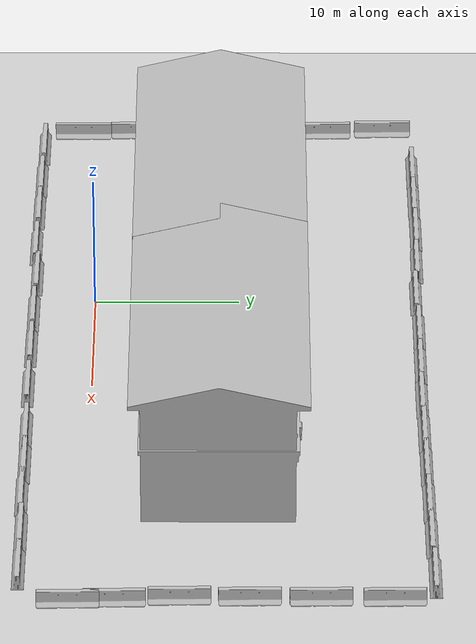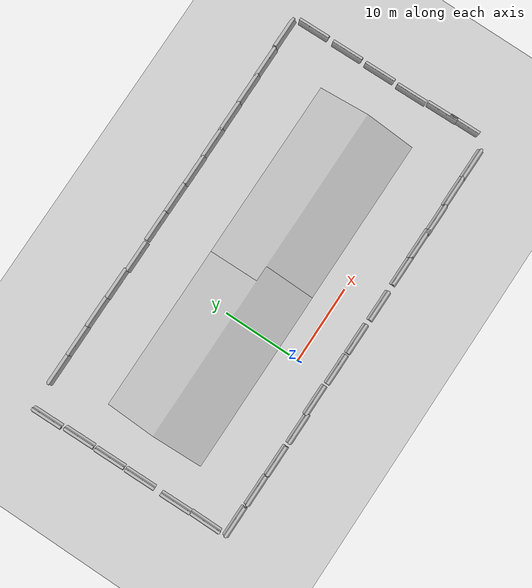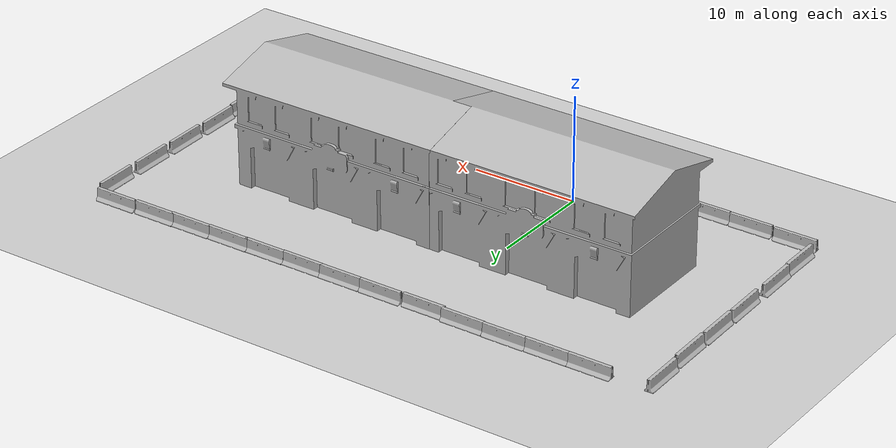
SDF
<sdf version="1.6">
 <world name="default">
  <physics name="default_physics" default="0" type="ode">
   <ode>
    <solver>
     <type>quick</type>
     <iters>40</iters>
     <sor>1</sor>
     <use_dynamic_moi_rescaling>0</use_dynamic_moi_rescaling>
    </solver>
    <constraints>
     <cfm>0</cfm>
     <erp>0.2</erp>
     <contact_max_correcting_vel>100</contact_max_correcting_vel>
     <contact_surface_layer>0</contact_surface_layer>
    </constraints>
   </ode>
   <max_step_size>0.001</max_step_size>
   <real_time_factor>1</real_time_factor>
   <real_time_update_rate>1000</real_time_update_rate>
  </physics>
  <light name="sun" type="directional">
   <pose>0 0 10 0 -0 0</pose>
   <diffuse>0.8 0.8 0.8 1</diffuse>
   <specular>0.1 0.1 0.1 1</specular>
   <attenuation>
    <range>1000</range>
    <constant>0.9</constant>
    <linear>0.01</linear>
    <quadratic>0.001</quadratic>
   </attenuation>
   <direction>-0.5 0.5 -1</direction>
  </light>
  <model name="ground_plane">
   <static>1</static>
   <link name="link">
    <collision name="collision">
     <geometry><plane><normal>0 0 1</normal><size>100 100</size></plane></geometry>
     <surface><friction><ode><mu>100</mu><mu2>50</mu2></ode></friction></surface>
    </collision>
    <visual name="visual">
     <cast_shadows>0</cast_shadows>
     <geometry><plane><normal>0 0 1</normal><size>100 100</size></plane></geometry>
     <material>
      <script><uri>file://media/materials/scripts/gazebo.material</uri><name>Gazebo/Grey</name></script>
     </material>
    </visual>
   </link>
  </model>
  <model name="b23">
   <static>1</static>
   <link name="link">
    <visual name="visual">
     <geometry>
      <mesh><uri>model://jersey_barrier/meshes/jersey_barrier.dae</uri><scale>1 1 1</scale></mesh>
     </geometry>
    </visual>
    <collision name="upright">
     <pose>0 0 0.5715 0 -0 0</pose>
     <geometry><box><size>4.06542 0.3063 1.143</size></box></geometry>
    </collision>
    <collision name="base">
     <pose>0 0 0.032258 0 -0 0</pose>
     <geometry><box><size>4.06542 0.8107 0.064516</size></box></geometry>
    </collision>
    <collision name="base2">
     <pose>0 0 0.1 0 -0 0</pose>
     <geometry><box><size>4.06542 0.65 0.1</size></box></geometry>
    </collision>
    <collision name="base3">
     <pose>0 0 0.2 0 -0 0</pose>
     <geometry><box><size>4.06542 0.5 0.1</size></box></geometry>
    </collision>
    <collision name="left-angle">
     <pose>0 -0.224 0.2401 0.9 -0 0</pose>
     <geometry><box><size>4.06542 0.5 0.064516</size></box></geometry>
    </collision>
    <collision name="right-angle">
     <pose>0 0.224 0.2401 -0.9 0 0</pose>
     <geometry><box><size>4.06542 0.5 0.064516</size></box></geometry>
    </collision>
   </link>
   <pose>-21.2253 -1.35772 0 0 0 -1.5708</pose>
  </model>
  <gravity>0 0 -9.8</gravity>
  <magnetic_field>6e-06 2.3e-05 -4.2e-05</magnetic_field>
  <atmosphere type="adiabatic"/>
  <scene><ambient>0.4 0.4 0.4 1</ambient><background>0.7 0.7 0.7 1</background><shadows>1</shadows></scene>
  <spherical_coordinates>
   <surface_model>EARTH_WGS84</surface_model>
   <latitude_deg>0</latitude_deg>
   <longitude_deg>0</longitude_deg>
   <elevation>0</elevation>
   <heading_deg>0</heading_deg>
  </spherical_coordinates>
  <model name="fire_station_0">
   <static>1</static>
   <link name="link">
    <collision name="main">
     <pose>0 -0.135 5 0 -0 0</pose>
     <geometry><box><size>19.98 9.68 10</size></box></geometry>
    </collision>
    <collision name="front_top">
     <pose>0 4.957 7 0 -0 0</pose>
     <geometry><box><size>20 0.515 6</size></box></geometry>
    </collision>
    <collision name="column_0">
     <pose>9.333 4.957 2 0 -0 0</pose>
     <geometry><box><size>1.315 0.515 4</size></box></geometry>
    </collision>
    <collision name="column_1">
     <pose>3.33 4.957 2 0 -0 0</pose>
     <geometry><box><size>2.63 0.515 4</size></box></geometry>
    </collision>
    <collision name="column_2">
     <pose>-3.33 4.957 2 0 -0 0</pose>
     <geometry><box><size>2.63 0.515 4</size></box></geometry>
    </collision>
    <collision name="column_3">
     <pose>-9.333 4.957 2 0 -0 0</pose>
     <geometry><box><size>1.315 0.515 4</size></box></geometry>
    </collision>
    <collision name="roof_back">
     <pose>0 -2.742 10.467 0.25 -0 0</pose>
     <geometry><box><size>21.47 6.12 0.28</size></box></geometry>
    </collision>
    <collision name="roof_front">
     <pose>0 3.12 10.467 -0.25 0 0</pose>
     <geometry><box><size>21.47 6.12 0.28</size></box></geometry>
    </collision>
    <collision name="roof_base">
     <pose>0 0.188 9.705 0 -0 0</pose>
     <geometry><box><size>21.47 11.86 0.28</size></box></geometry>
    </collision>
    <collision name="roof_filling_0">
     <pose>0 0.188 9.985 0 -0 0</pose>
     <geometry><box><size>21.47 9.53 0.28</size></box></geometry>
    </collision>
    <collision name="roof_filling_1">
     <pose>0 0.188 10.14 0 -0 0</pose>
     <geometry><box><size>21.47 8.41 0.28</size></box></geometry>
    </collision>
    <collision name="roof_filling_2">
     <pose>0 0.188 10.42 0 -0 0</pose>
     <geometry><box><size>21.47 6.25 0.28</size></box></geometry>
    </collision>
    <collision name="roof_filling_3">
     <pose>0 0.188 10.7 0 -0 0</pose>
     <geometry><box><size>21.47 4.05 0.28</size></box></geometry>
    </collision>
    <collision name="roof_filling_4">
     <pose>0 0.188 10.98 0 -0 0</pose>
     <geometry><box><size>21.47 1.83 0.28</size></box></geometry>
    </collision>
    <visual name="visual">
     <geometry><mesh><uri>model://fire_station/meshes/fire_station.dae</uri><scale>1 1 1</scale></mesh></geometry>
    </visual>
   </link>
   <pose>-4.34451 8.52287 0 0 -0 0</pose>
  </model>
  <model name="fire_station_0_clone">
   <static>1</static>
   <link name="link">
    <collision name="main">
     <pose>0 -0.135 5 0 -0 0</pose>
     <geometry><box><size>19.98 9.68 10</size></box></geometry>
    </collision>
    <collision name="front_top">
     <pose>0 4.957 7 0 -0 0</pose>
     <geometry><box><size>20 0.515 6</size></box></geometry>
    </collision>
    <collision name="column_0">
     <pose>9.333 4.957 2 0 -0 0</pose>
     <geometry><box><size>1.315 0.515 4</size></box></geometry>
    </collision>
    <collision name="column_1">
     <pose>3.33 4.957 2 0 -0 0</pose>
     <geometry><box><size>2.63 0.515 4</size></box></geometry>
    </collision>
    <collision name="column_2">
     <pose>-3.33 4.957 2 0 -0 0</pose>
     <geometry><box><size>2.63 0.515 4</size></box></geometry>
    </collision>
    <collision name="column_3">
     <pose>-9.333 4.957 2 0 -0 0</pose>
     <geometry><box><size>1.315 0.515 4</size></box></geometry>
    </collision>
    <collision name="roof_back">
     <pose>0 -2.742 10.467 0.25 -0 0</pose>
     <geometry><box><size>21.47 6.12 0.28</size></box></geometry>
    </collision>
    <collision name="roof_front">
     <pose>0 3.12 10.467 -0.25 0 0</pose>
     <geometry><box><size>21.47 6.12 0.28</size></box></geometry>
    </collision>
    <collision name="roof_base">
     <pose>0 0.188 9.705 0 -0 0</pose>
     <geometry><box><size>21.47 11.86 0.28</size></box></geometry>
    </collision>
    <collision name="roof_filling_0">
     <pose>0 0.188 9.985 0 -0 0</pose>
     <geometry><box><size>21.47 9.53 0.28</size></box></geometry>
    </collision>
    <collision name="roof_filling_1">
     <pose>0 0.188 10.14 0 -0 0</pose>
     <geometry><box><size>21.47 8.41 0.28</size></box></geometry>
    </collision>
    <collision name="roof_filling_2">
     <pose>0 0.188 10.42 0 -0 0</pose>
     <geometry><box><size>21.47 6.25 0.28</size></box></geometry>
    </collision>
    <collision name="roof_filling_3">
     <pose>0 0.188 10.7 0 -0 0</pose>
     <geometry><box><size>21.47 4.05 0.28</size></box></geometry>
    </collision>
    <collision name="roof_filling_4">
     <pose>0 0.188 10.98 0 -0 0</pose>
     <geometry><box><size>21.47 1.83 0.28</size></box></geometry>
    </collision>
    <visual name="visual">
     <geometry><mesh><uri>model://fire_station/meshes/fire_station.dae</uri><scale>1 1 1</scale></mesh></geometry>
    </visual>
   </link>
   <pose>15.2649 8.53542 0 0 -0 0</pose>
  </model>
  <model name="b11_clone">
   <static>1</static>
   <link name="link">
    <visual name="visual">
     <geometry>
      <mesh><uri>model://jersey_barrier/meshes/jersey_barrier.dae</uri><scale>1 1 1</scale></mesh>
     </geometry>
    </visual>
    <collision name="upright">
     <pose>0 0 0.5715 0 -0 0</pose>
     <geometry><box><size>4.06542 0.3063 1.143</size></box></geometry>
    </collision>
    <collision name="base">
     <pose>0 0 0.032258 0 -0 0</pose>
     <geometry><box><size>4.06542 0.8107 0.064516</size></box></geometry>
    </collision>
    <collision name="base2">
     <pose>0 0 0.1 0 -0 0</pose>
     <geometry><box><size>4.06542 0.65 0.1</size></box></geometry>
    </collision>
    <collision name="base3">
     <pose>0 0 0.2 0 -0 0</pose>
     <geometry><box><size>4.06542 0.5 0.1</size></box></geometry>
    </collision>
    <collision name="left-angle">
     <pose>0 -0.224 0.2401 0.9 -0 0</pose>
     <geometry><box><size>4.06542 0.5 0.064516</size></box></geometry>
    </collision>
    <collision name="right-angle">
     <pose>0 0.224 0.2401 -0.9 0 0</pose>
     <geometry><box><size>4.06542 0.5 0.064516</size></box></geometry>
    </collision>
   </link>
   <pose>-16.1937 22.5307 0 0 -0 0</pose>
  </model>
  <model name="b11_clone_0">
   <static>1</static>
   <link name="link">
    <visual name="visual">
     <geometry>
      <mesh><uri>model://jersey_barrier/meshes/jersey_barrier.dae</uri><scale>1 1 1</scale></mesh>
     </geometry>
    </visual>
    <collision name="upright">
     <pose>0 0 0.5715 0 -0 0</pose>
     <geometry><box><size>4.06542 0.3063 1.143</size></box></geometry>
    </collision>
    <collision name="base">
     <pose>0 0 0.032258 0 -0 0</pose>
     <geometry><box><size>4.06542 0.8107 0.064516</size></box></geometry>
    </collision>
    <collision name="base2">
     <pose>0 0 0.1 0 -0 0</pose>
     <geometry><box><size>4.06542 0.65 0.1</size></box></geometry>
    </collision>
    <collision name="base3">
     <pose>0 0 0.2 0 -0 0</pose>
     <geometry><box><size>4.06542 0.5 0.1</size></box></geometry>
    </collision>
    <collision name="left-angle">
     <pose>0 -0.224 0.2401 0.9 -0 0</pose>
     <geometry><box><size>4.06542 0.5 0.064516</size></box></geometry>
    </collision>
    <collision name="right-angle">
     <pose>0 0.224 0.2401 -0.9 0 0</pose>
     <geometry><box><size>4.06542 0.5 0.064516</size></box></geometry>
    </collision>
   </link>
   <pose>-12.2469 22.544 0 0 -0 0</pose>
  </model>
  <model name="b11_clone_1">
   <static>1</static>
   <link name="link">
    <visual name="visual">
     <geometry>
      <mesh><uri>model://jersey_barrier/meshes/jersey_barrier.dae</uri><scale>1 1 1</scale></mesh>
     </geometry>
    </visual>
    <collision name="upright">
     <pose>0 0 0.5715 0 -0 0</pose>
     <geometry><box><size>4.06542 0.3063 1.143</size></box></geometry>
    </collision>
    <collision name="base">
     <pose>0 0 0.032258 0 -0 0</pose>
     <geometry><box><size>4.06542 0.8107 0.064516</size></box></geometry>
    </collision>
    <collision name="base2">
     <pose>0 0 0.1 0 -0 0</pose>
     <geometry><box><size>4.06542 0.65 0.1</size></box></geometry>
    </collision>
    <collision name="base3">
     <pose>0 0 0.2 0 -0 0</pose>
     <geometry><box><size>4.06542 0.5 0.1</size></box></geometry>
    </collision>
    <collision name="left-angle">
     <pose>0 -0.224 0.2401 0.9 -0 0</pose>
     <geometry><box><size>4.06542 0.5 0.064516</size></box></geometry>
    </collision>
    <collision name="right-angle">
     <pose>0 0.224 0.2401 -0.9 0 0</pose>
     <geometry><box><size>4.06542 0.5 0.064516</size></box></geometry>
    </collision>
   </link>
   <pose>-8.21973 22.5785 0 0 -0 0</pose>
  </model>
  <model name="b11_clone_2">
   <static>1</static>
   <link name="link">
    <visual name="visual">
     <geometry>
      <mesh><uri>model://jersey_barrier/meshes/jersey_barrier.dae</uri><scale>1 1 1</scale></mesh>
     </geometry>
    </visual>
    <collision name="upright">
     <pose>0 0 0.5715 0 -0 0</pose>
     <geometry><box><size>4.06542 0.3063 1.143</size></box></geometry>
    </collision>
    <collision name="base">
     <pose>0 0 0.032258 0 -0 0</pose>
     <geometry><box><size>4.06542 0.8107 0.064516</size></box></geometry>
    </collision>
    <collision name="base2">
     <pose>0 0 0.1 0 -0 0</pose>
     <geometry><box><size>4.06542 0.65 0.1</size></box></geometry>
    </collision>
    <collision name="base3">
     <pose>0 0 0.2 0 -0 0</pose>
     <geometry><box><size>4.06542 0.5 0.1</size></box></geometry>
    </collision>
    <collision name="left-angle">
     <pose>0 -0.224 0.2401 0.9 -0 0</pose>
     <geometry><box><size>4.06542 0.5 0.064516</size></box></geometry>
    </collision>
    <collision name="right-angle">
     <pose>0 0.224 0.2401 -0.9 0 0</pose>
     <geometry><box><size>4.06542 0.5 0.064516</size></box></geometry>
    </collision>
   </link>
   <pose>-4.1949 22.5327 0 0 -0 0</pose>
  </model>
  <model name="b11_clone_3">
   <static>1</static>
   <link name="link">
    <visual name="visual">
     <geometry>
      <mesh><uri>model://jersey_barrier/meshes/jersey_barrier.dae</uri><scale>1 1 1</scale></mesh>
     </geometry>
    </visual>
    <collision name="upright">
     <pose>0 0 0.5715 0 -0 0</pose>
     <geometry><box><size>4.06542 0.3063 1.143</size></box></geometry>
    </collision>
    <collision name="base">
     <pose>0 0 0.032258 0 -0 0</pose>
     <geometry><box><size>4.06542 0.8107 0.064516</size></box></geometry>
    </collision>
    <collision name="base2">
     <pose>0 0 0.1 0 -0 0</pose>
     <geometry><box><size>4.06542 0.65 0.1</size></box></geometry>
    </collision>
    <collision name="base3">
     <pose>0 0 0.2 0 -0 0</pose>
     <geometry><box><size>4.06542 0.5 0.1</size></box></geometry>
    </collision>
    <collision name="left-angle">
     <pose>0 -0.224 0.2401 0.9 -0 0</pose>
     <geometry><box><size>4.06542 0.5 0.064516</size></box></geometry>
    </collision>
    <collision name="right-angle">
     <pose>0 0.224 0.2401 -0.9 0 0</pose>
     <geometry><box><size>4.06542 0.5 0.064516</size></box></geometry>
    </collision>
   </link>
   <pose>-0.299056 22.3633 0 0 -0 0</pose>
  </model>
  <model name="b11_clone_4">
   <static>1</static>
   <link name="link">
    <visual name="visual">
     <geometry>
      <mesh><uri>model://jersey_barrier/meshes/jersey_barrier.dae</uri><scale>1 1 1</scale></mesh>
     </geometry>
    </visual>
    <collision name="upright">
     <pose>0 0 0.5715 0 -0 0</pose>
     <geometry><box><size>4.06542 0.3063 1.143</size></box></geometry>
    </collision>
    <collision name="base">
     <pose>0 0 0.032258 0 -0 0</pose>
     <geometry><box><size>4.06542 0.8107 0.064516</size></box></geometry>
    </collision>
    <collision name="base2">
     <pose>0 0 0.1 0 -0 0</pose>
     <geometry><box><size>4.06542 0.65 0.1</size></box></geometry>
    </collision>
    <collision name="base3">
     <pose>0 0 0.2 0 -0 0</pose>
     <geometry><box><size>4.06542 0.5 0.1</size></box></geometry>
    </collision>
    <collision name="left-angle">
     <pose>0 -0.224 0.2401 0.9 -0 0</pose>
     <geometry><box><size>4.06542 0.5 0.064516</size></box></geometry>
    </collision>
    <collision name="right-angle">
     <pose>0 0.224 0.2401 -0.9 0 0</pose>
     <geometry><box><size>4.06542 0.5 0.064516</size></box></geometry>
    </collision>
   </link>
   <pose>3.90814 22.4709 0 0 -0 0</pose>
  </model>
  <model name="b11_clone_5">
   <static>1</static>
   <link name="link">
    <visual name="visual">
     <geometry>
      <mesh><uri>model://jersey_barrier/meshes/jersey_barrier.dae</uri><scale>1 1 1</scale></mesh>
     </geometry>
    </visual>
    <collision name="upright">
     <pose>0 0 0.5715 0 -0 0</pose>
     <geometry><box><size>4.06542 0.3063 1.143</size></box></geometry>
    </collision>
    <collision name="base">
     <pose>0 0 0.032258 0 -0 0</pose>
     <geometry><box><size>4.06542 0.8107 0.064516</size></box></geometry>
    </collision>
    <collision name="base2">
     <pose>0 0 0.1 0 -0 0</pose>
     <geometry><box><size>4.06542 0.65 0.1</size></box></geometry>
    </collision>
    <collision name="base3">
     <pose>0 0 0.2 0 -0 0</pose>
     <geometry><box><size>4.06542 0.5 0.1</size></box></geometry>
    </collision>
    <collision name="left-angle">
     <pose>0 -0.224 0.2401 0.9 -0 0</pose>
     <geometry><box><size>4.06542 0.5 0.064516</size></box></geometry>
    </collision>
    <collision name="right-angle">
     <pose>0 0.224 0.2401 -0.9 0 0</pose>
     <geometry><box><size>4.06542 0.5 0.064516</size></box></geometry>
    </collision>
   </link>
   <pose>7.96325 22.4572 0 0 -0 0</pose>
  </model>
  <model name="b11_clone_6">
   <static>1</static>
   <link name="link">
    <visual name="visual">
     <geometry>
      <mesh><uri>model://jersey_barrier/meshes/jersey_barrier.dae</uri><scale>1 1 1</scale></mesh>
     </geometry>
    </visual>
    <collision name="upright">
     <pose>0 0 0.5715 0 -0 0</pose>
     <geometry><box><size>4.06542 0.3063 1.143</size></box></geometry>
    </collision>
    <collision name="base">
     <pose>0 0 0.032258 0 -0 0</pose>
     <geometry><box><size>4.06542 0.8107 0.064516</size></box></geometry>
    </collision>
    <collision name="base2">
     <pose>0 0 0.1 0 -0 0</pose>
     <geometry><box><size>4.06542 0.65 0.1</size></box></geometry>
    </collision>
    <collision name="base3">
     <pose>0 0 0.2 0 -0 0</pose>
     <geometry><box><size>4.06542 0.5 0.1</size></box></geometry>
    </collision>
    <collision name="left-angle">
     <pose>0 -0.224 0.2401 0.9 -0 0</pose>
     <geometry><box><size>4.06542 0.5 0.064516</size></box></geometry>
    </collision>
    <collision name="right-angle">
     <pose>0 0.224 0.2401 -0.9 0 0</pose>
     <geometry><box><size>4.06542 0.5 0.064516</size></box></geometry>
    </collision>
   </link>
   <pose>11.8515 22.4341 0 0 -0 0</pose>
  </model>
  <model name="b11_clone_7">
   <static>1</static>
   <link name="link">
    <visual name="visual">
     <geometry>
      <mesh><uri>model://jersey_barrier/meshes/jersey_barrier.dae</uri><scale>1 1 1</scale></mesh>
     </geometry>
    </visual>
    <collision name="upright">
     <pose>0 0 0.5715 0 -0 0</pose>
     <geometry><box><size>4.06542 0.3063 1.143</size></box></geometry>
    </collision>
    <collision name="base">
     <pose>0 0 0.032258 0 -0 0</pose>
     <geometry><box><size>4.06542 0.8107 0.064516</size></box></geometry>
    </collision>
    <collision name="base2">
     <pose>0 0 0.1 0 -0 0</pose>
     <geometry><box><size>4.06542 0.65 0.1</size></box></geometry>
    </collision>
    <collision name="base3">
     <pose>0 0 0.2 0 -0 0</pose>
     <geometry><box><size>4.06542 0.5 0.1</size></box></geometry>
    </collision>
    <collision name="left-angle">
     <pose>0 -0.224 0.2401 0.9 -0 0</pose>
     <geometry><box><size>4.06542 0.5 0.064516</size></box></geometry>
    </collision>
    <collision name="right-angle">
     <pose>0 0.224 0.2401 -0.9 0 0</pose>
     <geometry><box><size>4.06542 0.5 0.064516</size></box></geometry>
    </collision>
   </link>
   <pose>15.7497 22.4839 0 0 -0 0</pose>
  </model>
  <model name="b11_clone_8">
   <static>1</static>
   <link name="link">
    <visual name="visual">
     <geometry>
      <mesh><uri>model://jersey_barrier/meshes/jersey_barrier.dae</uri><scale>1 1 1</scale></mesh>
     </geometry>
    </visual>
    <collision name="upright">
     <pose>0 0 0.5715 0 -0 0</pose>
     <geometry><box><size>4.06542 0.3063 1.143</size></box></geometry>
    </collision>
    <collision name="base">
     <pose>0 0 0.032258 0 -0 0</pose>
     <geometry><box><size>4.06542 0.8107 0.064516</size></box></geometry>
    </collision>
    <collision name="base2">
     <pose>0 0 0.1 0 -0 0</pose>
     <geometry><box><size>4.06542 0.65 0.1</size></box></geometry>
    </collision>
    <collision name="base3">
     <pose>0 0 0.2 0 -0 0</pose>
     <geometry><box><size>4.06542 0.5 0.1</size></box></geometry>
    </collision>
    <collision name="left-angle">
     <pose>0 -0.224 0.2401 0.9 -0 0</pose>
     <geometry><box><size>4.06542 0.5 0.064516</size></box></geometry>
    </collision>
    <collision name="right-angle">
     <pose>0 0.224 0.2401 -0.9 0 0</pose>
     <geometry><box><size>4.06542 0.5 0.064516</size></box></geometry>
    </collision>
   </link>
   <pose>19.4759 22.5207 0 0 -0 0</pose>
  </model>
  <model name="b11_clone_9">
   <static>1</static>
   <link name="link">
    <visual name="visual">
     <geometry>
      <mesh><uri>model://jersey_barrier/meshes/jersey_barrier.dae</uri><scale>1 1 1</scale></mesh>
     </geometry>
    </visual>
    <collision name="upright">
     <pose>0 0 0.5715 0 -0 0</pose>
     <geometry><box><size>4.06542 0.3063 1.143</size></box></geometry>
    </collision>
    <collision name="base">
     <pose>0 0 0.032258 0 -0 0</pose>
     <geometry><box><size>4.06542 0.8107 0.064516</size></box></geometry>
    </collision>
    <collision name="base2">
     <pose>0 0 0.1 0 -0 0</pose>
     <geometry><box><size>4.06542 0.65 0.1</size></box></geometry>
    </collision>
    <collision name="base3">
     <pose>0 0 0.2 0 -0 0</pose>
     <geometry><box><size>4.06542 0.5 0.1</size></box></geometry>
    </collision>
    <collision name="left-angle">
     <pose>0 -0.224 0.2401 0.9 -0 0</pose>
     <geometry><box><size>4.06542 0.5 0.064516</size></box></geometry>
    </collision>
    <collision name="right-angle">
     <pose>0 0.224 0.2401 -0.9 0 0</pose>
     <geometry><box><size>4.06542 0.5 0.064516</size></box></geometry>
    </collision>
   </link>
   <pose>23.4604 22.572 0 0 -0 0</pose>
  </model>
  <model name="b11_clone_10">
   <static>1</static>
   <link name="link">
    <visual name="visual">
     <geometry>
      <mesh><uri>model://jersey_barrier/meshes/jersey_barrier.dae</uri><scale>1 1 1</scale></mesh>
     </geometry>
    </visual>
    <collision name="upright">
     <pose>0 0 0.5715 0 -0 0</pose>
     <geometry><box><size>4.06542 0.3063 1.143</size></box></geometry>
    </collision>
    <collision name="base">
     <pose>0 0 0.032258 0 -0 0</pose>
     <geometry><box><size>4.06542 0.8107 0.064516</size></box></geometry>
    </collision>
    <collision name="base2">
     <pose>0 0 0.1 0 -0 0</pose>
     <geometry><box><size>4.06542 0.65 0.1</size></box></geometry>
    </collision>
    <collision name="base3">
     <pose>0 0 0.2 0 -0 0</pose>
     <geometry><box><size>4.06542 0.5 0.1</size></box></geometry>
    </collision>
    <collision name="left-angle">
     <pose>0 -0.224 0.2401 0.9 -0 0</pose>
     <geometry><box><size>4.06542 0.5 0.064516</size></box></geometry>
    </collision>
    <collision name="right-angle">
     <pose>0 0.224 0.2401 -0.9 0 0</pose>
     <geometry><box><size>4.06542 0.5 0.064516</size></box></geometry>
    </collision>
   </link>
   <pose>27.2635 22.6249 0 0 -0 0</pose>
  </model>
  <model name="b11_clone_11">
   <static>1</static>
   <link name="link">
    <visual name="visual">
     <geometry>
      <mesh><uri>model://jersey_barrier/meshes/jersey_barrier.dae</uri><scale>1 1 1</scale></mesh>
     </geometry>
    </visual>
    <collision name="upright">
     <pose>0 0 0.5715 0 -0 0</pose>
     <geometry><box><size>4.06542 0.3063 1.143</size></box></geometry>
    </collision>
    <collision name="base">
     <pose>0 0 0.032258 0 -0 0</pose>
     <geometry><box><size>4.06542 0.8107 0.064516</size></box></geometry>
    </collision>
    <collision name="base2">
     <pose>0 0 0.1 0 -0 0</pose>
     <geometry><box><size>4.06542 0.65 0.1</size></box></geometry>
    </collision>
    <collision name="base3">
     <pose>0 0 0.2 0 -0 0</pose>
     <geometry><box><size>4.06542 0.5 0.1</size></box></geometry>
    </collision>
    <collision name="left-angle">
     <pose>0 -0.224 0.2401 0.9 -0 0</pose>
     <geometry><box><size>4.06542 0.5 0.064516</size></box></geometry>
    </collision>
    <collision name="right-angle">
     <pose>0 0.224 0.2401 -0.9 0 0</pose>
     <geometry><box><size>4.06542 0.5 0.064516</size></box></geometry>
    </collision>
   </link>
   <pose>31.4004 22.7325 0 0 -0 0</pose>
  </model>
  <model name="b11_clone_13">
   <static>1</static>
   <link name="link">
    <visual name="visual">
     <geometry>
      <mesh><uri>model://jersey_barrier/meshes/jersey_barrier.dae</uri><scale>1 1 1</scale></mesh>
     </geometry>
    </visual>
    <collision name="upright">
     <pose>0 0 0.5715 0 -0 0</pose>
     <geometry><box><size>4.06542 0.3063 1.143</size></box></geometry>
    </collision>
    <collision name="base">
     <pose>0 0 0.032258 0 -0 0</pose>
     <geometry><box><size>4.06542 0.8107 0.064516</size></box></geometry>
    </collision>
    <collision name="base2">
     <pose>0 0 0.1 0 -0 0</pose>
     <geometry><box><size>4.06542 0.65 0.1</size></box></geometry>
    </collision>
    <collision name="base3">
     <pose>0 0 0.2 0 -0 0</pose>
     <geometry><box><size>4.06542 0.5 0.1</size></box></geometry>
    </collision>
    <collision name="left-angle">
     <pose>0 -0.224 0.2401 0.9 -0 0</pose>
     <geometry><box><size>4.06542 0.5 0.064516</size></box></geometry>
    </collision>
    <collision name="right-angle">
     <pose>0 0.224 0.2401 -0.9 0 0</pose>
     <geometry><box><size>4.06542 0.5 0.064516</size></box></geometry>
    </collision>
   </link>
   <pose>-10.9133 -4.27426 0 0 -0 0</pose>
  </model>
  <model name="b11_clone_14">
   <static>1</static>
   <link name="link">
    <visual name="visual">
     <geometry>
      <mesh><uri>model://jersey_barrier/meshes/jersey_barrier.dae</uri><scale>1 1 1</scale></mesh>
     </geometry>
    </visual>
    <collision name="upright">
     <pose>0 0 0.5715 0 -0 0</pose>
     <geometry><box><size>4.06542 0.3063 1.143</size></box></geometry>
    </collision>
    <collision name="base">
     <pose>0 0 0.032258 0 -0 0</pose>
     <geometry><box><size>4.06542 0.8107 0.064516</size></box></geometry>
    </collision>
    <collision name="base2">
     <pose>0 0 0.1 0 -0 0</pose>
     <geometry><box><size>4.06542 0.65 0.1</size></box></geometry>
    </collision>
    <collision name="base3">
     <pose>0 0 0.2 0 -0 0</pose>
     <geometry><box><size>4.06542 0.5 0.1</size></box></geometry>
    </collision>
    <collision name="left-angle">
     <pose>0 -0.224 0.2401 0.9 -0 0</pose>
     <geometry><box><size>4.06542 0.5 0.064516</size></box></geometry>
    </collision>
    <collision name="right-angle">
     <pose>0 0.224 0.2401 -0.9 0 0</pose>
     <geometry><box><size>4.06542 0.5 0.064516</size></box></geometry>
    </collision>
   </link>
   <pose>-6.46296 -4.34003 0 0 -0 0</pose>
  </model>
  <model name="b11_clone_15">
   <static>1</static>
   <link name="link">
    <visual name="visual">
     <geometry>
      <mesh><uri>model://jersey_barrier/meshes/jersey_barrier.dae</uri><scale>1 1 1</scale></mesh>
     </geometry>
    </visual>
    <collision name="upright">
     <pose>0 0 0.5715 0 -0 0</pose>
     <geometry><box><size>4.06542 0.3063 1.143</size></box></geometry>
    </collision>
    <collision name="base">
     <pose>0 0 0.032258 0 -0 0</pose>
     <geometry><box><size>4.06542 0.8107 0.064516</size></box></geometry>
    </collision>
    <collision name="base2">
     <pose>0 0 0.1 0 -0 0</pose>
     <geometry><box><size>4.06542 0.65 0.1</size></box></geometry>
    </collision>
    <collision name="base3">
     <pose>0 0 0.2 0 -0 0</pose>
     <geometry><box><size>4.06542 0.5 0.1</size></box></geometry>
    </collision>
    <collision name="left-angle">
     <pose>0 -0.224 0.2401 0.9 -0 0</pose>
     <geometry><box><size>4.06542 0.5 0.064516</size></box></geometry>
    </collision>
    <collision name="right-angle">
     <pose>0 0.224 0.2401 -0.9 0 0</pose>
     <geometry><box><size>4.06542 0.5 0.064516</size></box></geometry>
    </collision>
   </link>
   <pose>-2.66933 -4.15918 0 0 -0 0</pose>
  </model>
  <model name="b11_clone_16">
   <static>1</static>
   <link name="link">
    <visual name="visual">
     <geometry>
      <mesh><uri>model://jersey_barrier/meshes/jersey_barrier.dae</uri><scale>1 1 1</scale></mesh>
     </geometry>
    </visual>
    <collision name="upright">
     <pose>0 0 0.5715 0 -0 0</pose>
     <geometry><box><size>4.06542 0.3063 1.143</size></box></geometry>
    </collision>
    <collision name="base">
     <pose>0 0 0.032258 0 -0 0</pose>
     <geometry><box><size>4.06542 0.8107 0.064516</size></box></geometry>
    </collision>
    <collision name="base2">
     <pose>0 0 0.1 0 -0 0</pose>
     <geometry><box><size>4.06542 0.65 0.1</size></box></geometry>
    </collision>
    <collision name="base3">
     <pose>0 0 0.2 0 -0 0</pose>
     <geometry><box><size>4.06542 0.5 0.1</size></box></geometry>
    </collision>
    <collision name="left-angle">
     <pose>0 -0.224 0.2401 0.9 -0 0</pose>
     <geometry><box><size>4.06542 0.5 0.064516</size></box></geometry>
    </collision>
    <collision name="right-angle">
     <pose>0 0.224 0.2401 -0.9 0 0</pose>
     <geometry><box><size>4.06542 0.5 0.064516</size></box></geometry>
    </collision>
   </link>
   <pose>1.67401 -4.26971 0 0 -0 0</pose>
  </model>
  <model name="b11_clone_17">
   <static>1</static>
   <link name="link">
    <visual name="visual">
     <geometry>
      <mesh><uri>model://jersey_barrier/meshes/jersey_barrier.dae</uri><scale>1 1 1</scale></mesh>
     </geometry>
    </visual>
    <collision name="upright">
     <pose>0 0 0.5715 0 -0 0</pose>
     <geometry><box><size>4.06542 0.3063 1.143</size></box></geometry>
    </collision>
    <collision name="base">
     <pose>0 0 0.032258 0 -0 0</pose>
     <geometry><box><size>4.06542 0.8107 0.064516</size></box></geometry>
    </collision>
    <collision name="base2">
     <pose>0 0 0.1 0 -0 0</pose>
     <geometry><box><size>4.06542 0.65 0.1</size></box></geometry>
    </collision>
    <collision name="base3">
     <pose>0 0 0.2 0 -0 0</pose>
     <geometry><box><size>4.06542 0.5 0.1</size></box></geometry>
    </collision>
    <collision name="left-angle">
     <pose>0 -0.224 0.2401 0.9 -0 0</pose>
     <geometry><box><size>4.06542 0.5 0.064516</size></box></geometry>
    </collision>
    <collision name="right-angle">
     <pose>0 0.224 0.2401 -0.9 0 0</pose>
     <geometry><box><size>4.06542 0.5 0.064516</size></box></geometry>
    </collision>
   </link>
   <pose>5.91889 -4.30027 0 0 -0 0</pose>
  </model>
  <model name="b11_clone_18">
   <static>1</static>
   <link name="link">
    <visual name="visual">
     <geometry>
      <mesh><uri>model://jersey_barrier/meshes/jersey_barrier.dae</uri><scale>1 1 1</scale></mesh>
     </geometry>
    </visual>
    <collision name="upright">
     <pose>0 0 0.5715 0 -0 0</pose>
     <geometry><box><size>4.06542 0.3063 1.143</size></box></geometry>
    </collision>
    <collision name="base">
     <pose>0 0 0.032258 0 -0 0</pose>
     <geometry><box><size>4.06542 0.8107 0.064516</size></box></geometry>
    </collision>
    <collision name="base2">
     <pose>0 0 0.1 0 -0 0</pose>
     <geometry><box><size>4.06542 0.65 0.1</size></box></geometry>
    </collision>
    <collision name="base3">
     <pose>0 0 0.2 0 -0 0</pose>
     <geometry><box><size>4.06542 0.5 0.1</size></box></geometry>
    </collision>
    <collision name="left-angle">
     <pose>0 -0.224 0.2401 0.9 -0 0</pose>
     <geometry><box><size>4.06542 0.5 0.064516</size></box></geometry>
    </collision>
    <collision name="right-angle">
     <pose>0 0.224 0.2401 -0.9 0 0</pose>
     <geometry><box><size>4.06542 0.5 0.064516</size></box></geometry>
    </collision>
   </link>
   <pose>10.559 -4.34993 0 0 -0 0</pose>
  </model>
  <model name="b11_clone_19">
   <static>1</static>
   <link name="link">
    <visual name="visual">
     <geometry>
      <mesh><uri>model://jersey_barrier/meshes/jersey_barrier.dae</uri><scale>1 1 1</scale></mesh>
     </geometry>
    </visual>
    <collision name="upright">
     <pose>0 0 0.5715 0 -0 0</pose>
     <geometry><box><size>4.06542 0.3063 1.143</size></box></geometry>
    </collision>
    <collision name="base">
     <pose>0 0 0.032258 0 -0 0</pose>
     <geometry><box><size>4.06542 0.8107 0.064516</size></box></geometry>
    </collision>
    <collision name="base2">
     <pose>0 0 0.1 0 -0 0</pose>
     <geometry><box><size>4.06542 0.65 0.1</size></box></geometry>
    </collision>
    <collision name="base3">
     <pose>0 0 0.2 0 -0 0</pose>
     <geometry><box><size>4.06542 0.5 0.1</size></box></geometry>
    </collision>
    <collision name="left-angle">
     <pose>0 -0.224 0.2401 0.9 -0 0</pose>
     <geometry><box><size>4.06542 0.5 0.064516</size></box></geometry>
    </collision>
    <collision name="right-angle">
     <pose>0 0.224 0.2401 -0.9 0 0</pose>
     <geometry><box><size>4.06542 0.5 0.064516</size></box></geometry>
    </collision>
   </link>
   <pose>15.47 -4.31913 0 0 -0 0</pose>
  </model>
  <model name="b11_clone_20">
   <static>1</static>
   <link name="link">
    <visual name="visual">
     <geometry>
      <mesh><uri>model://jersey_barrier/meshes/jersey_barrier.dae</uri><scale>1 1 1</scale></mesh>
     </geometry>
    </visual>
    <collision name="upright">
     <pose>0 0 0.5715 0 -0 0</pose>
     <geometry><box><size>4.06542 0.3063 1.143</size></box></geometry>
    </collision>
    <collision name="base">
     <pose>0 0 0.032258 0 -0 0</pose>
     <geometry><box><size>4.06542 0.8107 0.064516</size></box></geometry>
    </collision>
    <collision name="base2">
     <pose>0 0 0.1 0 -0 0</pose>
     <geometry><box><size>4.06542 0.65 0.1</size></box></geometry>
    </collision>
    <collision name="base3">
     <pose>0 0 0.2 0 -0 0</pose>
     <geometry><box><size>4.06542 0.5 0.1</size></box></geometry>
    </collision>
    <collision name="left-angle">
     <pose>0 -0.224 0.2401 0.9 -0 0</pose>
     <geometry><box><size>4.06542 0.5 0.064516</size></box></geometry>
    </collision>
    <collision name="right-angle">
     <pose>0 0.224 0.2401 -0.9 0 0</pose>
     <geometry><box><size>4.06542 0.5 0.064516</size></box></geometry>
    </collision>
   </link>
   <pose>19.2272 -4.29897 0 0 -0 0</pose>
  </model>
  <model name="b11_clone_21">
   <static>1</static>
   <link name="link">
    <visual name="visual">
     <geometry>
      <mesh><uri>model://jersey_barrier/meshes/jersey_barrier.dae</uri><scale>1 1 1</scale></mesh>
     </geometry>
    </visual>
    <collision name="upright">
     <pose>0 0 0.5715 0 -0 0</pose>
     <geometry><box><size>4.06542 0.3063 1.143</size></box></geometry>
    </collision>
    <collision name="base">
     <pose>0 0 0.032258 0 -0 0</pose>
     <geometry><box><size>4.06542 0.8107 0.064516</size></box></geometry>
    </collision>
    <collision name="base2">
     <pose>0 0 0.1 0 -0 0</pose>
     <geometry><box><size>4.06542 0.65 0.1</size></box></geometry>
    </collision>
    <collision name="base3">
     <pose>0 0 0.2 0 -0 0</pose>
     <geometry><box><size>4.06542 0.5 0.1</size></box></geometry>
    </collision>
    <collision name="left-angle">
     <pose>0 -0.224 0.2401 0.9 -0 0</pose>
     <geometry><box><size>4.06542 0.5 0.064516</size></box></geometry>
    </collision>
    <collision name="right-angle">
     <pose>0 0.224 0.2401 -0.9 0 0</pose>
     <geometry><box><size>4.06542 0.5 0.064516</size></box></geometry>
    </collision>
   </link>
   <pose>22.7182 -4.36585 0 0 -0 0</pose>
  </model>
  <model name="b11_clone_22">
   <static>1</static>
   <link name="link">
    <visual name="visual">
     <geometry>
      <mesh><uri>model://jersey_barrier/meshes/jersey_barrier.dae</uri><scale>1 1 1</scale></mesh>
     </geometry>
    </visual>
    <collision name="upright">
     <pose>0 0 0.5715 0 -0 0</pose>
     <geometry><box><size>4.06542 0.3063 1.143</size></box></geometry>
    </collision>
    <collision name="base">
     <pose>0 0 0.032258 0 -0 0</pose>
     <geometry><box><size>4.06542 0.8107 0.064516</size></box></geometry>
    </collision>
    <collision name="base2">
     <pose>0 0 0.1 0 -0 0</pose>
     <geometry><box><size>4.06542 0.65 0.1</size></box></geometry>
    </collision>
    <collision name="base3">
     <pose>0 0 0.2 0 -0 0</pose>
     <geometry><box><size>4.06542 0.5 0.1</size></box></geometry>
    </collision>
    <collision name="left-angle">
     <pose>0 -0.224 0.2401 0.9 -0 0</pose>
     <geometry><box><size>4.06542 0.5 0.064516</size></box></geometry>
    </collision>
    <collision name="right-angle">
     <pose>0 0.224 0.2401 -0.9 0 0</pose>
     <geometry><box><size>4.06542 0.5 0.064516</size></box></geometry>
    </collision>
   </link>
   <pose>26.6539 -4.28301 0 0 -0 0</pose>
  </model>
  <model name="b11_clone_23">
   <static>1</static>
   <link name="link">
    <visual name="visual">
     <geometry>
      <mesh><uri>model://jersey_barrier/meshes/jersey_barrier.dae</uri><scale>1 1 1</scale></mesh>
     </geometry>
    </visual>
    <collision name="upright">
     <pose>0 0 0.5715 0 -0 0</pose>
     <geometry><box><size>4.06542 0.3063 1.143</size></box></geometry>
    </collision>
    <collision name="base">
     <pose>0 0 0.032258 0 -0 0</pose>
     <geometry><box><size>4.06542 0.8107 0.064516</size></box></geometry>
    </collision>
    <collision name="base2">
     <pose>0 0 0.1 0 -0 0</pose>
     <geometry><box><size>4.06542 0.65 0.1</size></box></geometry>
    </collision>
    <collision name="base3">
     <pose>0 0 0.2 0 -0 0</pose>
     <geometry><box><size>4.06542 0.5 0.1</size></box></geometry>
    </collision>
    <collision name="left-angle">
     <pose>0 -0.224 0.2401 0.9 -0 0</pose>
     <geometry><box><size>4.06542 0.5 0.064516</size></box></geometry>
    </collision>
    <collision name="right-angle">
     <pose>0 0.224 0.2401 -0.9 0 0</pose>
     <geometry><box><size>4.06542 0.5 0.064516</size></box></geometry>
    </collision>
   </link>
   <pose>30.5435 -4.29433 0 0 -0 0</pose>
  </model>
  <model name="b11_clone_25">
   <static>1</static>
   <link name="link">
    <visual name="visual">
     <geometry>
      <mesh><uri>model://jersey_barrier/meshes/jersey_barrier.dae</uri><scale>1 1 1</scale></mesh>
     </geometry>
    </visual>
    <collision name="upright">
     <pose>0 0 0.5715 0 -0 0</pose>
     <geometry><box><size>4.06542 0.3063 1.143</size></box></geometry>
    </collision>
    <collision name="base">
     <pose>0 0 0.032258 0 -0 0</pose>
     <geometry><box><size>4.06542 0.8107 0.064516</size></box></geometry>
    </collision>
    <collision name="base2">
     <pose>0 0 0.1 0 -0 0</pose>
     <geometry><box><size>4.06542 0.65 0.1</size></box></geometry>
    </collision>
    <collision name="base3">
     <pose>0 0 0.2 0 -0 0</pose>
     <geometry><box><size>4.06542 0.5 0.1</size></box></geometry>
    </collision>
    <collision name="left-angle">
     <pose>0 -0.224 0.2401 0.9 -0 0</pose>
     <geometry><box><size>4.06542 0.5 0.064516</size></box></geometry>
    </collision>
    <collision name="right-angle">
     <pose>0 0.224 0.2401 -0.9 0 0</pose>
     <geometry><box><size>4.06542 0.5 0.064516</size></box></geometry>
    </collision>
   </link>
   <pose>-15.0108 -4.2245 0 0 -0 0</pose>
  </model>
  <model name="b11_clone_26">
   <static>1</static>
   <link name="link">
    <visual name="visual">
     <geometry>
      <mesh><uri>model://jersey_barrier/meshes/jersey_barrier.dae</uri><scale>1 1 1</scale></mesh>
     </geometry>
    </visual>
    <collision name="upright">
     <pose>0 0 0.5715 0 -0 0</pose>
     <geometry><box><size>4.06542 0.3063 1.143</size></box></geometry>
    </collision>
    <collision name="base">
     <pose>0 0 0.032258 0 -0 0</pose>
     <geometry><box><size>4.06542 0.8107 0.064516</size></box></geometry>
    </collision>
    <collision name="base2">
     <pose>0 0 0.1 0 -0 0</pose>
     <geometry><box><size>4.06542 0.65 0.1</size></box></geometry>
    </collision>
    <collision name="base3">
     <pose>0 0 0.2 0 -0 0</pose>
     <geometry><box><size>4.06542 0.5 0.1</size></box></geometry>
    </collision>
    <collision name="left-angle">
     <pose>0 -0.224 0.2401 0.9 -0 0</pose>
     <geometry><box><size>4.06542 0.5 0.064516</size></box></geometry>
    </collision>
    <collision name="right-angle">
     <pose>0 0.224 0.2401 -0.9 0 0</pose>
     <geometry><box><size>4.06542 0.5 0.064516</size></box></geometry>
    </collision>
   </link>
   <pose>-19.2921 -4.13518 0 0 -0 0</pose>
  </model>
  <model name="b11_clone_27">
   <static>1</static>
   <link name="link">
    <visual name="visual">
     <geometry>
      <mesh><uri>model://jersey_barrier/meshes/jersey_barrier.dae</uri><scale>1 1 1</scale></mesh>
     </geometry>
    </visual>
    <collision name="upright">
     <pose>0 0 0.5715 0 -0 0</pose>
     <geometry><box><size>4.06542 0.3063 1.143</size></box></geometry>
    </collision>
    <collision name="base">
     <pose>0 0 0.032258 0 -0 0</pose>
     <geometry><box><size>4.06542 0.8107 0.064516</size></box></geometry>
    </collision>
    <collision name="base2">
     <pose>0 0 0.1 0 -0 0</pose>
     <geometry><box><size>4.06542 0.65 0.1</size></box></geometry>
    </collision>
    <collision name="base3">
     <pose>0 0 0.2 0 -0 0</pose>
     <geometry><box><size>4.06542 0.5 0.1</size></box></geometry>
    </collision>
    <collision name="left-angle">
     <pose>0 -0.224 0.2401 0.9 -0 0</pose>
     <geometry><box><size>4.06542 0.5 0.064516</size></box></geometry>
    </collision>
    <collision name="right-angle">
     <pose>0 0.224 0.2401 -0.9 0 0</pose>
     <geometry><box><size>4.06542 0.5 0.064516</size></box></geometry>
    </collision>
   </link>
   <pose>-21.5188 20.4799 0 0 -0 1.58687</pose>
  </model>
  <model name="b11_clone_28">
   <static>1</static>
   <link name="link">
    <visual name="visual">
     <geometry>
      <mesh><uri>model://jersey_barrier/meshes/jersey_barrier.dae</uri><scale>1 1 1</scale></mesh>
     </geometry>
    </visual>
    <collision name="upright">
     <pose>0 0 0.5715 0 -0 0</pose>
     <geometry><box><size>4.06542 0.3063 1.143</size></box></geometry>
    </collision>
    <collision name="base">
     <pose>0 0 0.032258 0 -0 0</pose>
     <geometry><box><size>4.06542 0.8107 0.064516</size></box></geometry>
    </collision>
    <collision name="base2">
     <pose>0 0 0.1 0 -0 0</pose>
     <geometry><box><size>4.06542 0.65 0.1</size></box></geometry>
    </collision>
    <collision name="base3">
     <pose>0 0 0.2 0 -0 0</pose>
     <geometry><box><size>4.06542 0.5 0.1</size></box></geometry>
    </collision>
    <collision name="left-angle">
     <pose>0 -0.224 0.2401 0.9 -0 0</pose>
     <geometry><box><size>4.06542 0.5 0.064516</size></box></geometry>
    </collision>
    <collision name="right-angle">
     <pose>0 0.224 0.2401 -0.9 0 0</pose>
     <geometry><box><size>4.06542 0.5 0.064516</size></box></geometry>
    </collision>
   </link>
   <pose>-21.3168 16.1017 0 0 -0 1.58687</pose>
  </model>
  <model name="b11_clone_29">
   <static>1</static>
   <link name="link">
    <visual name="visual">
     <geometry>
      <mesh><uri>model://jersey_barrier/meshes/jersey_barrier.dae</uri><scale>1 1 1</scale></mesh>
     </geometry>
    </visual>
    <collision name="upright">
     <pose>0 0 0.5715 0 -0 0</pose>
     <geometry><box><size>4.06542 0.3063 1.143</size></box></geometry>
    </collision>
    <collision name="base">
     <pose>0 0 0.032258 0 -0 0</pose>
     <geometry><box><size>4.06542 0.8107 0.064516</size></box></geometry>
    </collision>
    <collision name="base2">
     <pose>0 0 0.1 0 -0 0</pose>
     <geometry><box><size>4.06542 0.65 0.1</size></box></geometry>
    </collision>
    <collision name="base3">
     <pose>0 0 0.2 0 -0 0</pose>
     <geometry><box><size>4.06542 0.5 0.1</size></box></geometry>
    </collision>
    <collision name="left-angle">
     <pose>0 -0.224 0.2401 0.9 -0 0</pose>
     <geometry><box><size>4.06542 0.5 0.064516</size></box></geometry>
    </collision>
    <collision name="right-angle">
     <pose>0 0.224 0.2401 -0.9 0 0</pose>
     <geometry><box><size>4.06542 0.5 0.064516</size></box></geometry>
    </collision>
   </link>
   <pose>-21.3149 11.8611 0 0 -0 1.58687</pose>
  </model>
  <model name="b11_clone_30">
   <static>1</static>
   <link name="link">
    <visual name="visual">
     <geometry>
      <mesh><uri>model://jersey_barrier/meshes/jersey_barrier.dae</uri><scale>1 1 1</scale></mesh>
     </geometry>
    </visual>
    <collision name="upright">
     <pose>0 0 0.5715 0 -0 0</pose>
     <geometry><box><size>4.06542 0.3063 1.143</size></box></geometry>
    </collision>
    <collision name="base">
     <pose>0 0 0.032258 0 -0 0</pose>
     <geometry><box><size>4.06542 0.8107 0.064516</size></box></geometry>
    </collision>
    <collision name="base2">
     <pose>0 0 0.1 0 -0 0</pose>
     <geometry><box><size>4.06542 0.65 0.1</size></box></geometry>
    </collision>
    <collision name="base3">
     <pose>0 0 0.2 0 -0 0</pose>
     <geometry><box><size>4.06542 0.5 0.1</size></box></geometry>
    </collision>
    <collision name="left-angle">
     <pose>0 -0.224 0.2401 0.9 -0 0</pose>
     <geometry><box><size>4.06542 0.5 0.064516</size></box></geometry>
    </collision>
    <collision name="right-angle">
     <pose>0 0.224 0.2401 -0.9 0 0</pose>
     <geometry><box><size>4.06542 0.5 0.064516</size></box></geometry>
    </collision>
   </link>
   <pose>-21.3143 7.64429 0 0 -0 1.58687</pose>
  </model>
  <model name="b11_clone_31">
   <static>1</static>
   <link name="link">
    <visual name="visual">
     <geometry>
      <mesh><uri>model://jersey_barrier/meshes/jersey_barrier.dae</uri><scale>1 1 1</scale></mesh>
     </geometry>
    </visual>
    <collision name="upright">
     <pose>0 0 0.5715 0 -0 0</pose>
     <geometry><box><size>4.06542 0.3063 1.143</size></box></geometry>
    </collision>
    <collision name="base">
     <pose>0 0 0.032258 0 -0 0</pose>
     <geometry><box><size>4.06542 0.8107 0.064516</size></box></geometry>
    </collision>
    <collision name="base2">
     <pose>0 0 0.1 0 -0 0</pose>
     <geometry><box><size>4.06542 0.65 0.1</size></box></geometry>
    </collision>
    <collision name="base3">
     <pose>0 0 0.2 0 -0 0</pose>
     <geometry><box><size>4.06542 0.5 0.1</size></box></geometry>
    </collision>
    <collision name="left-angle">
     <pose>0 -0.224 0.2401 0.9 -0 0</pose>
     <geometry><box><size>4.06542 0.5 0.064516</size></box></geometry>
    </collision>
    <collision name="right-angle">
     <pose>0 0.224 0.2401 -0.9 0 0</pose>
     <geometry><box><size>4.06542 0.5 0.064516</size></box></geometry>
    </collision>
   </link>
   <pose>-21.3311 2.70307 0 0 -0 1.58687</pose>
  </model>
  <model name="b11_clone_32">
   <static>1</static>
   <link name="link">
    <visual name="visual">
     <geometry>
      <mesh><uri>model://jersey_barrier/meshes/jersey_barrier.dae</uri><scale>1 1 1</scale></mesh>
     </geometry>
    </visual>
    <collision name="upright">
     <pose>0 0 0.5715 0 -0 0</pose>
     <geometry><box><size>4.06542 0.3063 1.143</size></box></geometry>
    </collision>
    <collision name="base">
     <pose>0 0 0.032258 0 -0 0</pose>
     <geometry><box><size>4.06542 0.8107 0.064516</size></box></geometry>
    </collision>
    <collision name="base2">
     <pose>0 0 0.1 0 -0 0</pose>
     <geometry><box><size>4.06542 0.65 0.1</size></box></geometry>
    </collision>
    <collision name="base3">
     <pose>0 0 0.2 0 -0 0</pose>
     <geometry><box><size>4.06542 0.5 0.1</size></box></geometry>
    </collision>
    <collision name="left-angle">
     <pose>0 -0.224 0.2401 0.9 -0 0</pose>
     <geometry><box><size>4.06542 0.5 0.064516</size></box></geometry>
    </collision>
    <collision name="right-angle">
     <pose>0 0.224 0.2401 -0.9 0 0</pose>
     <geometry><box><size>4.06542 0.5 0.064516</size></box></geometry>
    </collision>
   </link>
   <pose>33.7624 20.0597 0 0 -0 1.58687</pose>
  </model>
  <model name="b11_clone_33">
   <static>1</static>
   <link name="link">
    <visual name="visual">
     <geometry>
      <mesh><uri>model://jersey_barrier/meshes/jersey_barrier.dae</uri><scale>1 1 1</scale></mesh>
     </geometry>
    </visual>
    <collision name="upright">
     <pose>0 0 0.5715 0 -0 0</pose>
     <geometry><box><size>4.06542 0.3063 1.143</size></box></geometry>
    </collision>
    <collision name="base">
     <pose>0 0 0.032258 0 -0 0</pose>
     <geometry><box><size>4.06542 0.8107 0.064516</size></box></geometry>
    </collision>
    <collision name="base2">
     <pose>0 0 0.1 0 -0 0</pose>
     <geometry><box><size>4.06542 0.65 0.1</size></box></geometry>
    </collision>
    <collision name="base3">
     <pose>0 0 0.2 0 -0 0</pose>
     <geometry><box><size>4.06542 0.5 0.1</size></box></geometry>
    </collision>
    <collision name="left-angle">
     <pose>0 -0.224 0.2401 0.9 -0 0</pose>
     <geometry><box><size>4.06542 0.5 0.064516</size></box></geometry>
    </collision>
    <collision name="right-angle">
     <pose>0 0.224 0.2401 -0.9 0 0</pose>
     <geometry><box><size>4.06542 0.5 0.064516</size></box></geometry>
    </collision>
   </link>
   <pose>33.7603 15.3142 0 0 -0 1.58687</pose>
  </model>
  <model name="b11_clone_34">
   <static>1</static>
   <link name="link">
    <visual name="visual">
     <geometry>
      <mesh><uri>model://jersey_barrier/meshes/jersey_barrier.dae</uri><scale>1 1 1</scale></mesh>
     </geometry>
    </visual>
    <collision name="upright">
     <pose>0 0 0.5715 0 -0 0</pose>
     <geometry><box><size>4.06542 0.3063 1.143</size></box></geometry>
    </collision>
    <collision name="base">
     <pose>0 0 0.032258 0 -0 0</pose>
     <geometry><box><size>4.06542 0.8107 0.064516</size></box></geometry>
    </collision>
    <collision name="base2">
     <pose>0 0 0.1 0 -0 0</pose>
     <geometry><box><size>4.06542 0.65 0.1</size></box></geometry>
    </collision>
    <collision name="base3">
     <pose>0 0 0.2 0 -0 0</pose>
     <geometry><box><size>4.06542 0.5 0.1</size></box></geometry>
    </collision>
    <collision name="left-angle">
     <pose>0 -0.224 0.2401 0.9 -0 0</pose>
     <geometry><box><size>4.06542 0.5 0.064516</size></box></geometry>
    </collision>
    <collision name="right-angle">
     <pose>0 0.224 0.2401 -0.9 0 0</pose>
     <geometry><box><size>4.06542 0.5 0.064516</size></box></geometry>
    </collision>
   </link>
   <pose>33.7367 10.724 0 0 -0 1.58687</pose>
  </model>
  <model name="b11_clone_35">
   <static>1</static>
   <link name="link">
    <visual name="visual">
     <geometry>
      <mesh><uri>model://jersey_barrier/meshes/jersey_barrier.dae</uri><scale>1 1 1</scale></mesh>
     </geometry>
    </visual>
    <collision name="upright">
     <pose>0 0 0.5715 0 -0 0</pose>
     <geometry><box><size>4.06542 0.3063 1.143</size></box></geometry>
    </collision>
    <collision name="base">
     <pose>0 0 0.032258 0 -0 0</pose>
     <geometry><box><size>4.06542 0.8107 0.064516</size></box></geometry>
    </collision>
    <collision name="base2">
     <pose>0 0 0.1 0 -0 0</pose>
     <geometry><box><size>4.06542 0.65 0.1</size></box></geometry>
    </collision>
    <collision name="base3">
     <pose>0 0 0.2 0 -0 0</pose>
     <geometry><box><size>4.06542 0.5 0.1</size></box></geometry>
    </collision>
    <collision name="left-angle">
     <pose>0 -0.224 0.2401 0.9 -0 0</pose>
     <geometry><box><size>4.06542 0.5 0.064516</size></box></geometry>
    </collision>
    <collision name="right-angle">
     <pose>0 0.224 0.2401 -0.9 0 0</pose>
     <geometry><box><size>4.06542 0.5 0.064516</size></box></geometry>
    </collision>
   </link>
   <pose>33.675 6.18286 0 0 -0 1.58687</pose>
  </model>
  <model name="b11_clone_36">
   <static>1</static>
   <link name="link">
    <visual name="visual">
     <geometry>
      <mesh><uri>model://jersey_barrier/meshes/jersey_barrier.dae</uri><scale>1 1 1</scale></mesh>
     </geometry>
    </visual>
    <collision name="upright">
     <pose>0 0 0.5715 0 -0 0</pose>
     <geometry><box><size>4.06542 0.3063 1.143</size></box></geometry>
    </collision>
    <collision name="base">
     <pose>0 0 0.032258 0 -0 0</pose>
     <geometry><box><size>4.06542 0.8107 0.064516</size></box></geometry>
    </collision>
    <collision name="base2">
     <pose>0 0 0.1 0 -0 0</pose>
     <geometry><box><size>4.06542 0.65 0.1</size></box></geometry>
    </collision>
    <collision name="base3">
     <pose>0 0 0.2 0 -0 0</pose>
     <geometry><box><size>4.06542 0.5 0.1</size></box></geometry>
    </collision>
    <collision name="left-angle">
     <pose>0 -0.224 0.2401 0.9 -0 0</pose>
     <geometry><box><size>4.06542 0.5 0.064516</size></box></geometry>
    </collision>
    <collision name="right-angle">
     <pose>0 0.224 0.2401 -0.9 0 0</pose>
     <geometry><box><size>4.06542 0.5 0.064516</size></box></geometry>
    </collision>
   </link>
   <pose>33.884 1.99905 0 0 -0 1.58687</pose>
  </model>
  <model name="b11_clone_37">
   <static>1</static>
   <link name="link">
    <visual name="visual">
     <geometry>
      <mesh><uri>model://jersey_barrier/meshes/jersey_barrier.dae</uri><scale>1 1 1</scale></mesh>
     </geometry>
    </visual>
    <collision name="upright">
     <pose>0 0 0.5715 0 -0 0</pose>
     <geometry><box><size>4.06542 0.3063 1.143</size></box></geometry>
    </collision>
    <collision name="base">
     <pose>0 0 0.032258 0 -0 0</pose>
     <geometry><box><size>4.06542 0.8107 0.064516</size></box></geometry>
    </collision>
    <collision name="base2">
     <pose>0 0 0.1 0 -0 0</pose>
     <geometry><box><size>4.06542 0.65 0.1</size></box></geometry>
    </collision>
    <collision name="base3">
     <pose>0 0 0.2 0 -0 0</pose>
     <geometry><box><size>4.06542 0.5 0.1</size></box></geometry>
    </collision>
    <collision name="left-angle">
     <pose>0 -0.224 0.2401 0.9 -0 0</pose>
     <geometry><box><size>4.06542 0.5 0.064516</size></box></geometry>
    </collision>
    <collision name="right-angle">
     <pose>0 0.224 0.2401 -0.9 0 0</pose>
     <geometry><box><size>4.06542 0.5 0.064516</size></box></geometry>
    </collision>
   </link>
   <pose>34 -1 0 0 -0 1.58687</pose>
  </model>
 </world>
</sdf>
